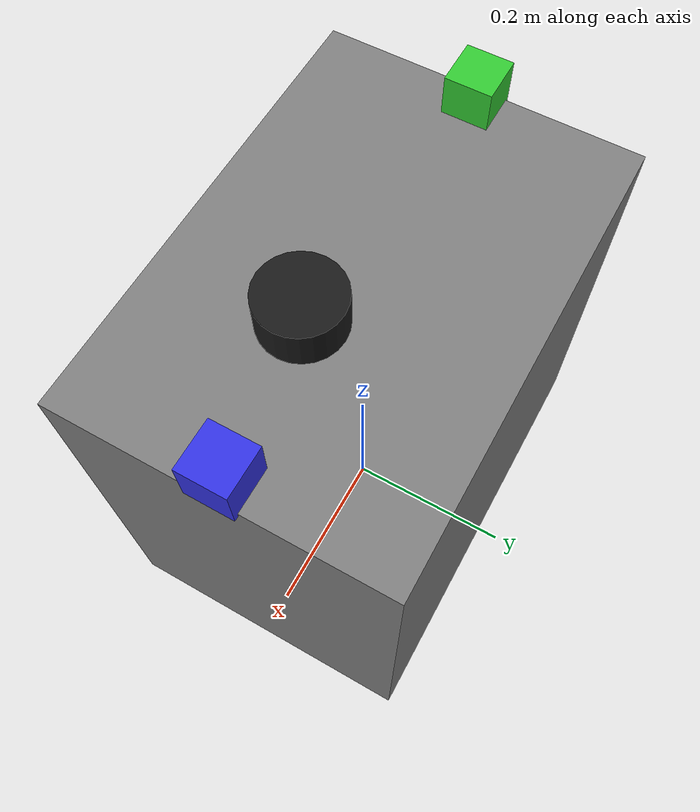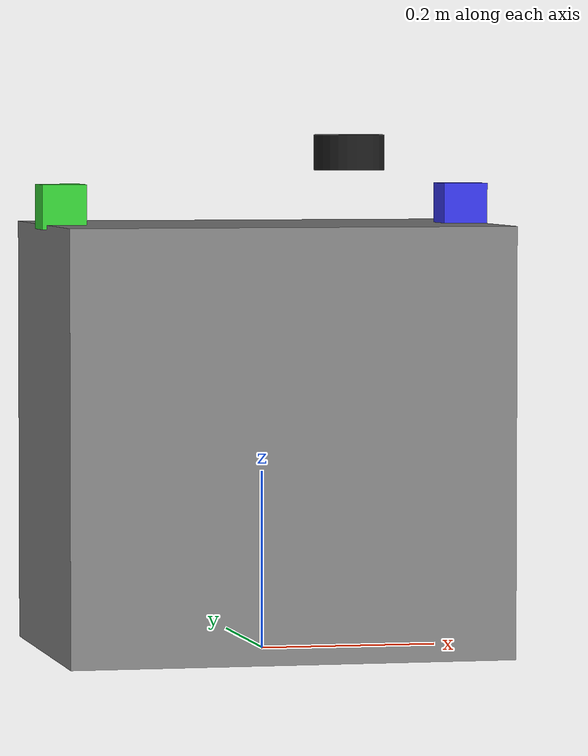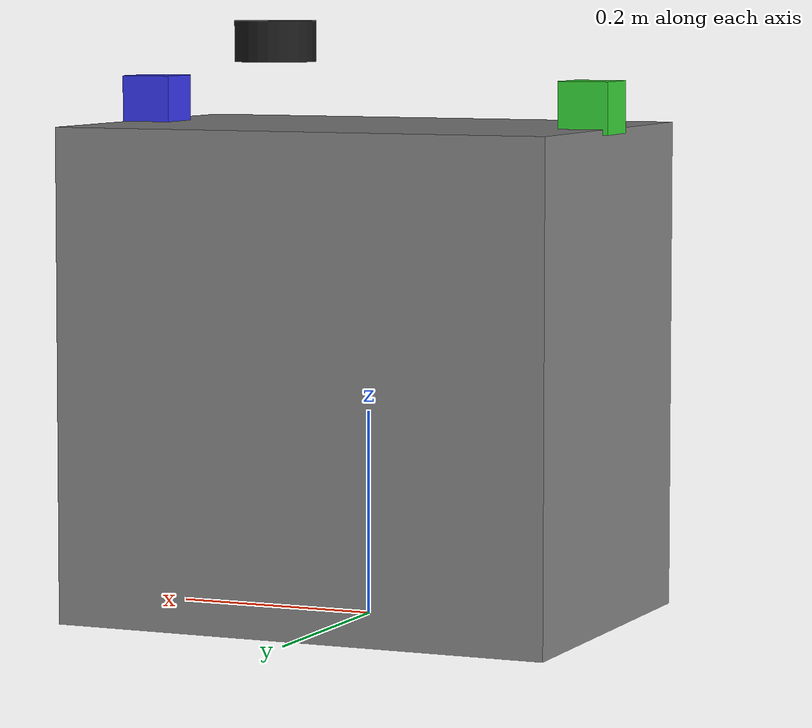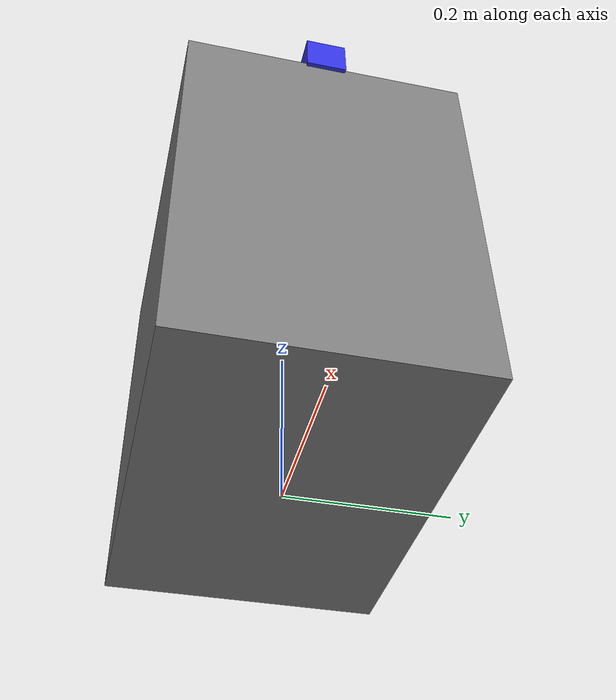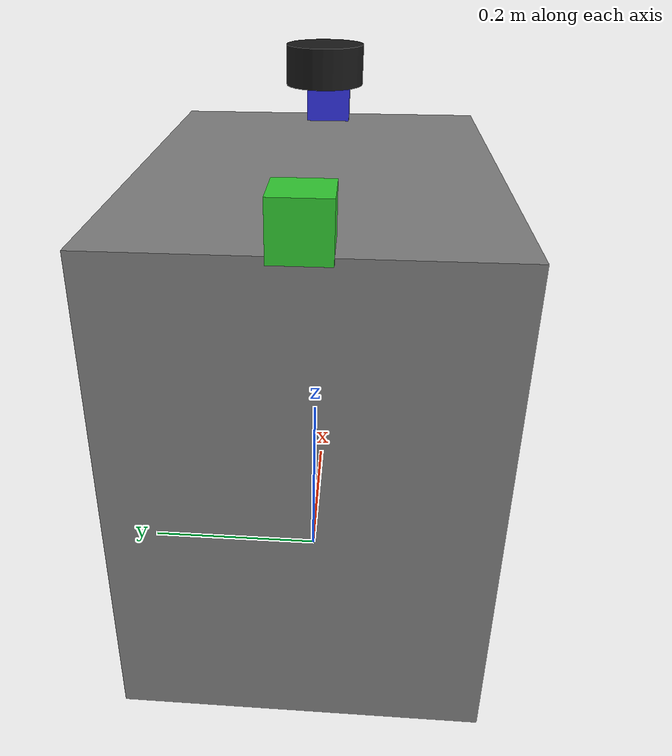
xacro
<?xml version="1.0"?>
<robot name="smart_agent" xmlns:xacro="http://www.ros.org/wiki/xacro">

  <link name="base_link">
    <inertial>
      <origin xyz="0 0 0" rpy="0 0 0"/>
      <mass value="8.0"/>
      <inertia ixx="0.28" ixy="0.0" ixz="0.0" iyy="0.28" iyz="0.0" izz="0.45"/>
    </inertial>
    <visual>
      <origin xyz="0 0 0.24" rpy="0 0 0"/>
      <geometry>
        <box size="0.5 0.35 0.48"/>
      </geometry>
      <material name="gray">
        <color rgba="0.5 0.5 0.5 1"/>
      </material>
    </visual>
    <collision>
      <origin xyz="0 0 0.24" rpy="0 0 0"/>
      <geometry>
        <box size="0.5 0.35 0.48"/>
      </geometry>
    </collision>
  </link>

  <link name="lidar_link">
    <visual>
      <geometry>
        <cylinder length="0.04" radius="0.04"/>
      </geometry>
      <material name="black">
        <color rgba="0.1 0.1 0.1 1"/>
      </material>
    </visual>
  </link>
  <joint name="lidar_joint" type="fixed">
    <parent link="base_link"/>
    <child link="lidar_link"/>
    <origin xyz="0.10 0 0.56" rpy="0 0 0"/>
  </joint>

  <link name="front_camera_link">
    <visual>
      <geometry>
        <box size="0.05 0.05 0.05"/>
      </geometry>
      <material name="blue">
        <color rgba="0.2 0.2 0.9 1"/>
      </material>
    </visual>
  </link>
  <joint name="front_camera_joint" type="fixed">
    <parent link="base_link"/>
    <child link="front_camera_link"/>
    <origin xyz="0.23 0 0.50" rpy="0 0 0"/>
  </joint>

  <link name="rear_camera_link">
    <visual>
      <geometry>
        <box size="0.05 0.05 0.05"/>
      </geometry>
      <material name="green">
        <color rgba="0.2 0.8 0.2 1"/>
      </material>
    </visual>
  </link>
  <joint name="rear_camera_joint" type="fixed">
    <parent link="base_link"/>
    <child link="rear_camera_link"/>
    <origin xyz="-0.23 0 0.50" rpy="0 0 3.14159"/>
  </joint>

  <link name="depth_camera_link">
    <visual>
      <geometry>
        <box size="0.05 0.05 0.05"/>
      </geometry>
      <material name="orange">
        <color rgba="0.9 0.4 0.1 1"/>
      </material>
    </visual>
  </link>
  <joint name="depth_camera_joint" type="fixed">
    <parent link="base_link"/>
    <child link="depth_camera_link"/>
    <origin xyz="0.23 0 0.50" rpy="0 0 0"/>
  </joint>

  <gazebo reference="base_link">
    <material>Gazebo/Grey</material>
  </gazebo>

  <gazebo reference="lidar_link">
    <sensor type="ray" name="lidar_sensor">
      <always_on>true</always_on>
      <update_rate>10</update_rate>
      <visualize>true</visualize>
      <pose>0 0 0 0 0 0</pose>
      <ray>
        <scan>
          <horizontal>
            <samples>720</samples>
            <resolution>1</resolution>
            <min_angle>-3.14159</min_angle>
            <max_angle>3.14159</max_angle>
          </horizontal>
        </scan>
        <range>
          <min>0.12</min>
          <max>15.0</max>
          <resolution>0.01</resolution>
        </range>
        <noise>
          <type>gaussian</type>
          <mean>0.0</mean>
          <stddev>0.005</stddev>
        </noise>
      </ray>
      <plugin name="gazebo_ros_lidar" filename="libgazebo_ros_ray_sensor.so">
        <ros>
          <namespace>/agent</namespace>
          <remapping>~/out:=/agent/lidar/scan</remapping>
        </ros>
        <frame_name>lidar_link</frame_name>
      </plugin>
    </sensor>
  </gazebo>

  <gazebo reference="front_camera_link">
    <sensor type="camera" name="front_rgb_sensor">
      <always_on>true</always_on>
      <update_rate>20</update_rate>
      <camera>
        <horizontal_fov>1.396</horizontal_fov>
        <image>
          <width>640</width>
          <height>480</height>
          <format>R8G8B8</format>
        </image>
        <clip>
          <near>0.05</near>
          <far>50.0</far>
        </clip>
      </camera>
      <plugin name="gazebo_ros_front_camera" filename="libgazebo_ros_camera.so">
        <ros>
          <namespace>/agent</namespace>
          <remapping>image_raw:=/agent/front_camera/image_raw</remapping>
          <remapping>camera_info:=/agent/front_camera/camera_info</remapping>
        </ros>
        <frame_name>front_camera_link</frame_name>
      </plugin>
    </sensor>
  </gazebo>

  <gazebo reference="rear_camera_link">
    <sensor type="camera" name="rear_rgb_sensor">
      <always_on>true</always_on>
      <update_rate>20</update_rate>
      <camera>
        <horizontal_fov>1.396</horizontal_fov>
        <image>
          <width>640</width>
          <height>480</height>
          <format>R8G8B8</format>
        </image>
        <clip>
          <near>0.05</near>
          <far>50.0</far>
        </clip>
      </camera>
      <plugin name="gazebo_ros_rear_camera" filename="libgazebo_ros_camera.so">
        <ros>
          <namespace>/agent</namespace>
          <remapping>image_raw:=/agent/rear_camera/image_raw</remapping>
          <remapping>camera_info:=/agent/rear_camera/camera_info</remapping>
        </ros>
        <frame_name>rear_camera_link</frame_name>
      </plugin>
    </sensor>
  </gazebo>

  <gazebo reference="depth_camera_link">
    <sensor type="depth" name="depth_sensor">
      <always_on>true</always_on>
      <update_rate>15</update_rate>
      <camera>
        <horizontal_fov>1.396</horizontal_fov>
        <image>
          <width>640</width>
          <height>480</height>
          <format>R8G8B8</format>
        </image>
        <clip>
          <near>0.1</near>
          <far>20.0</far>
        </clip>
      </camera>
      <plugin name="gazebo_ros_depth_camera" filename="libgazebo_ros_camera.so">
        <ros>
          <namespace>/agent</namespace>
          <remapping>image_raw:=/agent/depth_camera/image_raw</remapping>
          <remapping>camera_info:=/agent/depth_camera/camera_info</remapping>
          <remapping>depth/image_raw:=/agent/depth_camera/depth/image_raw</remapping>
          <remapping>points:=/agent/depth_camera/points</remapping>
        </ros>
        <frame_name>depth_camera_link</frame_name>
      </plugin>
    </sensor>
  </gazebo>

</robot>
